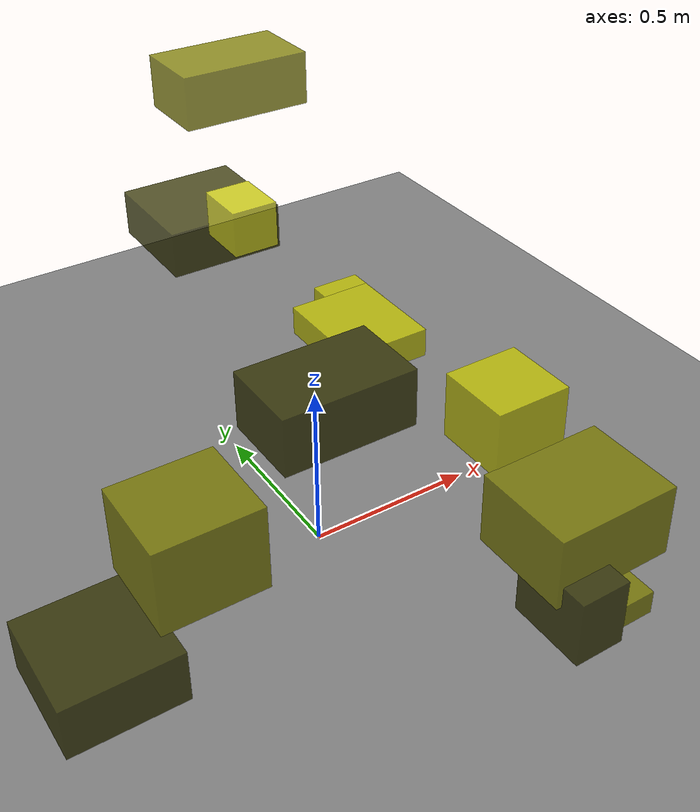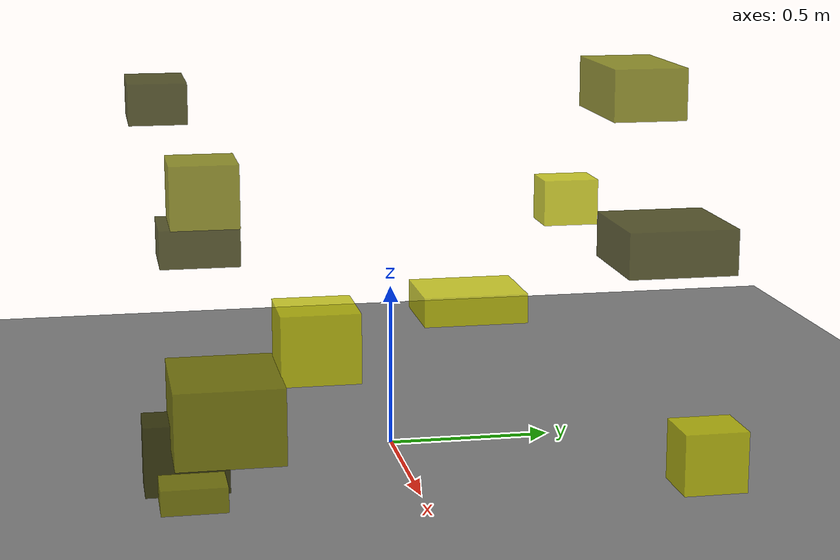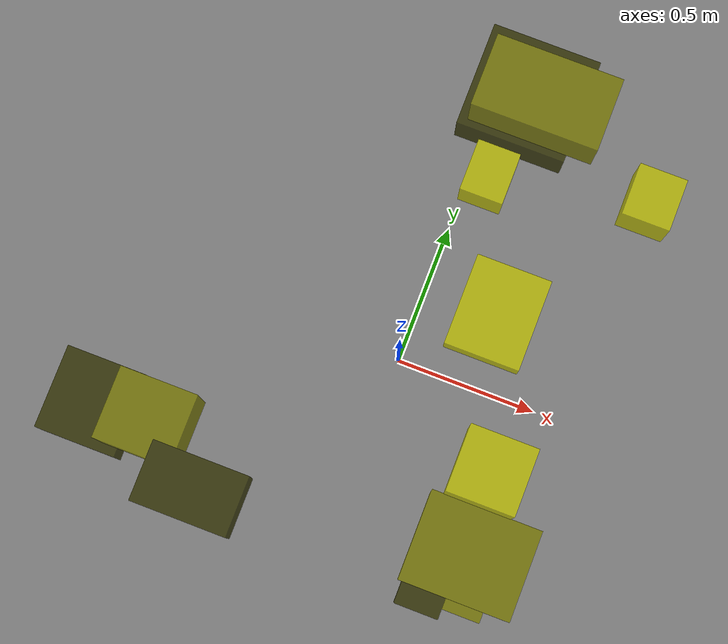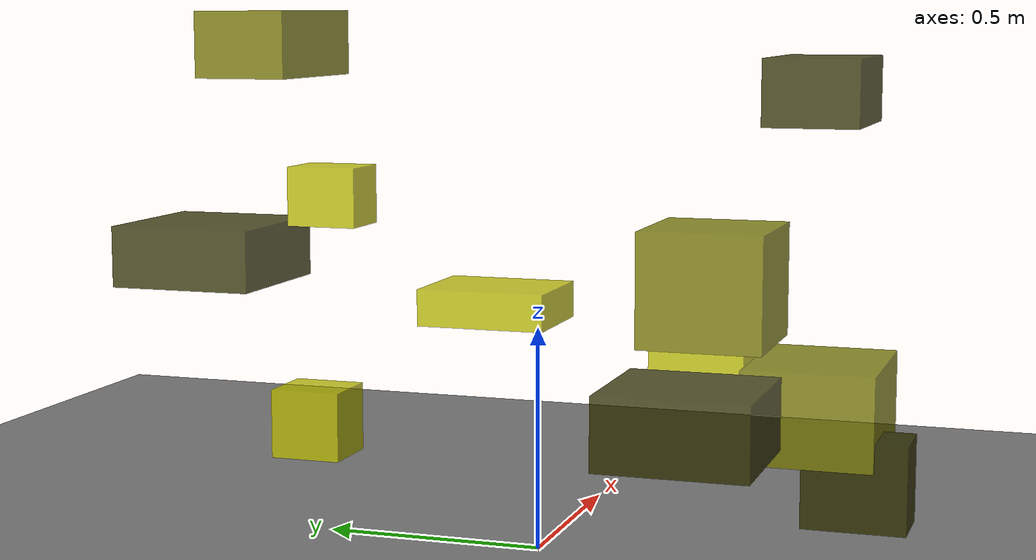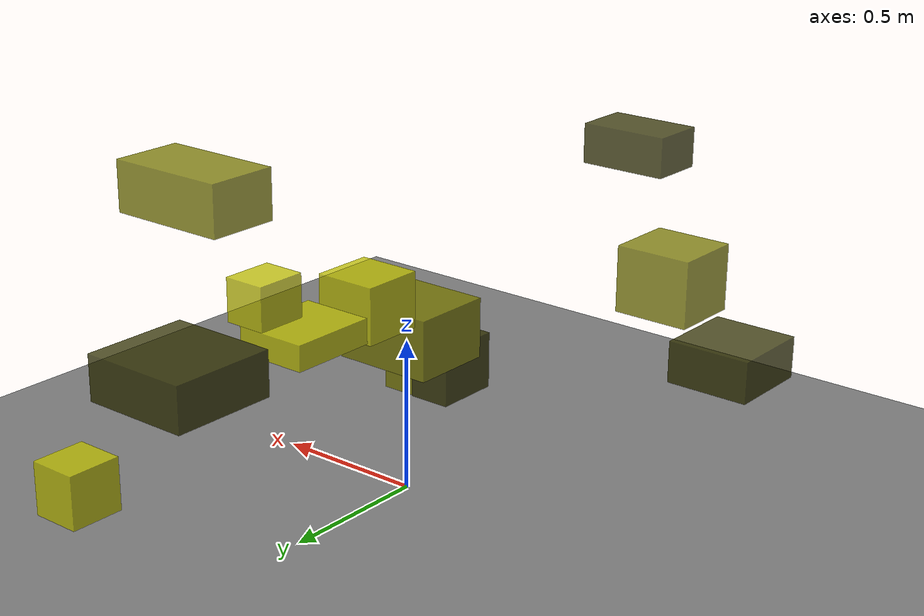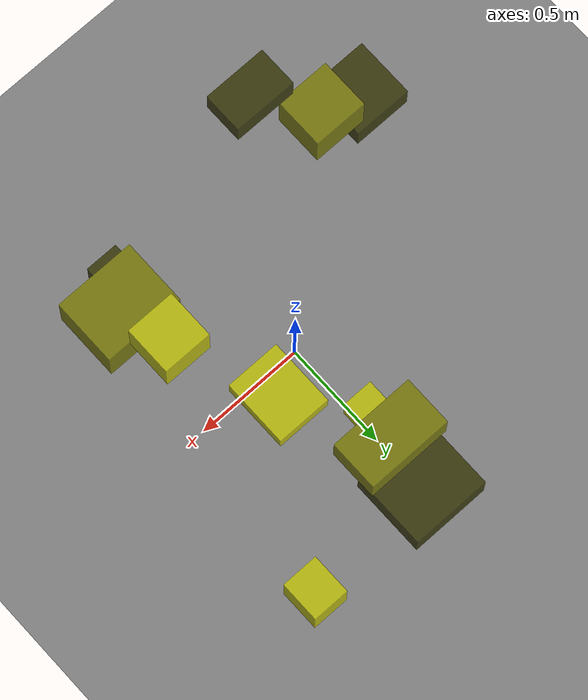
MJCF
<?xml version="1.0"?>
<mujoco model="obstacle_scene">
  <compiler angle="radian" coordinate="local"/>
  <option timestep="0.001" gravity="0 0 -9.81"/>

  <asset>
    <material name="obstacle_mat" rgba="0.8 0.8 0.0 0.8"/>
    <material name="ground_mat" rgba="0.5 0.5 0.5 1"/>
  </asset>

  <worldbody>
    <!-- Ground plane -->
    <geom name="ground" type="plane" size="3 3 0.1" material="ground_mat"/>

    <!-- Obstacles -->
    <body name="obstacle_0" pos="0.104745 0.845978 0.625871">
      <geom name="obs_0" type="box" size="0.177734 0.170916 0.071403" rgba="0.2 0.2 0.0 0.8"/>
    </body>
    <body name="obstacle_1" pos="-0.613092 -0.527812 0.704132">
      <geom name="obs_1" type="box" size="0.123785 0.114598 0.106134" rgba="0.5 0.5 0.0 0.8"/>
    </body>
    <body name="obstacle_2" pos="0.258646 0.186211 0.508626">
      <geom name="obs_2" type="box" size="0.125175 0.152402 0.043105" rgba="0.8 0.8 0.0 0.8"/>
    </body>
    <body name="obstacle_3" pos="0.356136 -0.659642 0.121392">
      <geom name="obs_3" type="box" size="0.076192 0.121034 0.103557" rgba="0.2 0.2 0.0 0.8"/>
    </body>
    <body name="obstacle_4" pos="0.161601 0.706368 1.116651">
      <geom name="obs_4" type="box" size="0.188994 0.109650 0.076430" rgba="0.5 0.5 0.0 0.8"/>
    </body>
    <body name="obstacle_5" pos="0.083664 0.527426 0.771114">
      <geom name="obs_5" type="box" size="0.067910 0.082110 0.068118" rgba="0.8 0.8 0.0 0.8"/>
    </body>
    <body name="obstacle_6" pos="-0.372613 -0.680999 1.047515">
      <geom name="obs_6" type="box" size="0.143240 0.090246 0.063543" rgba="0.2 0.2 0.0 0.8"/>
    </body>
    <body name="obstacle_7" pos="0.452362 -0.551534 0.270326">
      <geom name="obs_7" type="box" size="0.188864 0.154057 0.110453" rgba="0.5 0.5 0.0 0.8"/>
    </body>
    <body name="obstacle_8" pos="0.625109 0.815004 0.111100">
      <geom name="obs_8" type="box" size="0.085318 0.094233 0.090737" rgba="0.8 0.8 0.0 0.8"/>
    </body>
    <body name="obstacle_9" pos="-0.831800 -0.533372 0.491033">
      <geom name="obs_9" type="box" size="0.133880 0.137366 0.066334" rgba="0.2 0.2 0.0 0.8"/>
    </body>
    <body name="obstacle_10" pos="0.438429 -0.649710 0.048028">
      <geom name="obs_10" type="box" size="0.134293 0.094417 0.036823" rgba="0.5 0.5 0.0 0.8"/>
    </body>
    <body name="obstacle_11" pos="0.416546 -0.285920 0.451705">
      <geom name="obs_11" type="box" size="0.114064 0.113131 0.100885" rgba="0.8 0.8 0.0 0.8"/>
    </body>
  </worldbody>
</mujoco>
